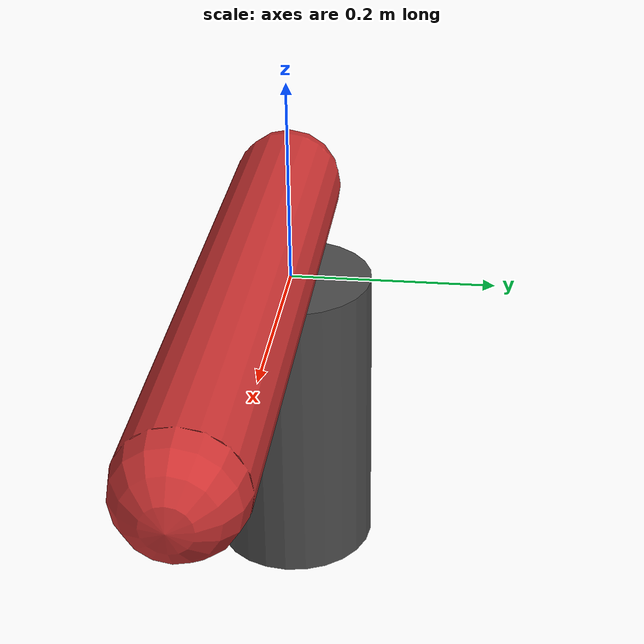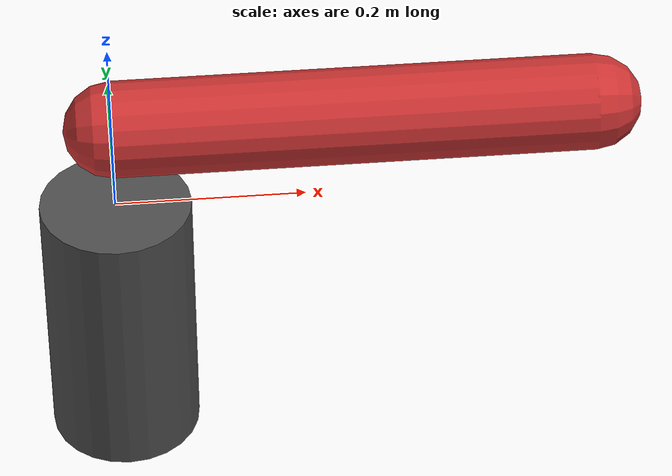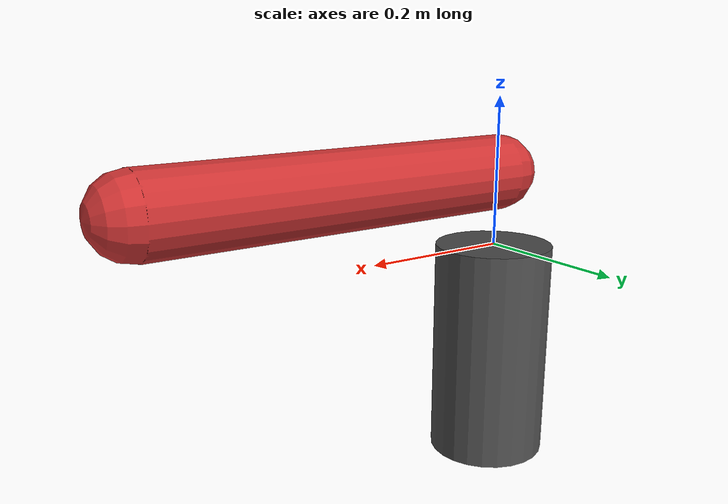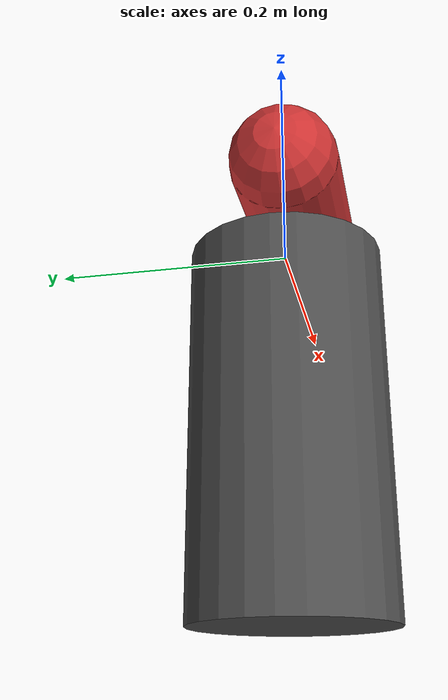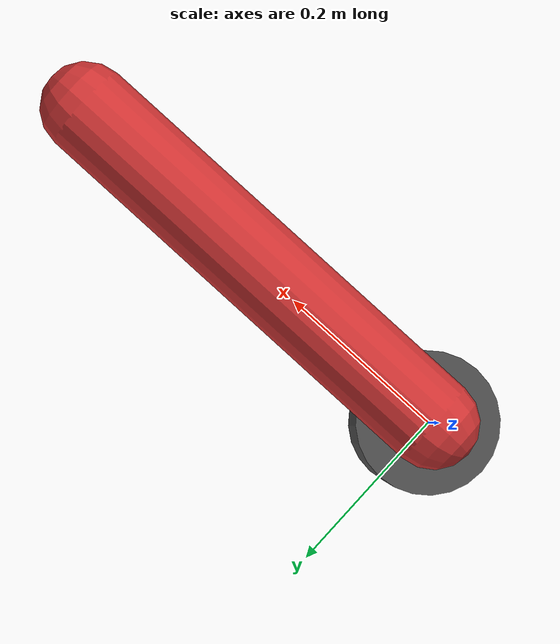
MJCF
<mujoco>
  <compiler angle="radian"/>
  <option timestep="0.01" gravity="0 0 0"/>
  <worldbody>
    <!-- 底座，避免悬空；顶面低于 z=0.05，不挡旋转臂 -->
    <body name="pedestal" pos="0 0 -0.15">
      <geom type="cylinder" size="0.08 0.15" rgba="0.3 0.3 0.3 1"/>
    </body>
    <body name="arm" pos="0 0 0.1">
      <joint name="motor" type="hinge" axis="0 0 1"
             damping="0.5" range="-3.14 3.14" limited="true"/>
      <geom type="capsule" fromto="0 0 0 0.5 0 0" size="0.05" density="200" rgba="0.8 0.2 0.2 1"/>
    </body>
  </worldbody>
  <actuator>
    <motor joint="motor" ctrlrange="-1 1" gear="1"/>
  </actuator>
</mujoco>
